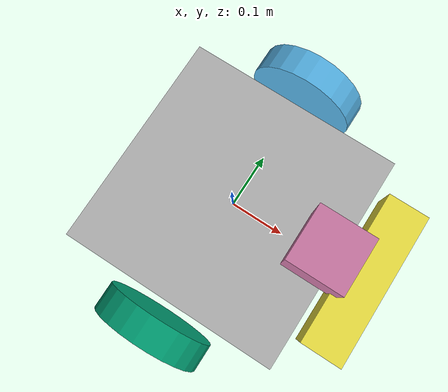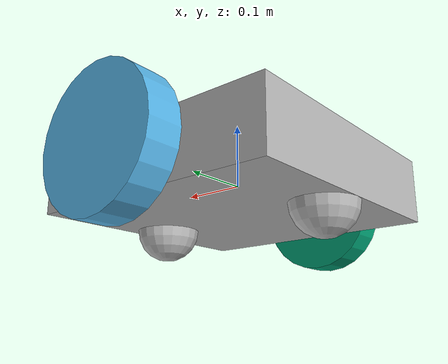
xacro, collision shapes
<?xml version='1.0'?>

<robot name="nick_bot" xmlns:xacro="http://www.ros.org/wiki/xacro">
    <xacro:include filename="$(find slam_project)/urdf/udacity_bot.gazebo"/>
    <link name="robot_footprint"></link>

    <joint name="robot_footprint_joint" type="fixed">
        <origin xyz="0 0 0" rpy="0 0 0"/>
        <parent link="robot_footprint"/>
        <child link="chassis"/>
    </joint>

    <link name='left_wheel'>
        <inertial>
            <mass value="5.0"/>
            <origin xyz="0.0 0 0" rpy=" 0 1.5707 1.5707"/>
            <inertia ixx="0.1" ixy="0" ixz="0" iyy="0.1" iyz="0" izz="0.1"/>
        </inertial>

        <collision name='collision'>
            <origin xyz="0.0 0 0" rpy=" 0 1.5707 1.5707"/>
            <geometry>
                <cylinder length="0.05" radius="0.1"/>
            </geometry>
        </collision>

        <visual name='wheel_visual'>
            <origin xyz="0.0 0 0" rpy=" 0 1.5707 1.5707"/>
            <geometry>
                <cylinder length="0.05" radius="0.1"/>
            </geometry>
        </visual>
    </link>

    <joint type="continuous" name="left_wheel_hinge">
        <origin xyz="0.0 0.25 0" rpy="0 0 0"/>
        <child link="left_wheel"/>
        <parent link="chassis"/>
        <axis xyz="0 1 0" rpy="0 0 0"/>
        <limit effort="10000" velocity="1000"/>
        <joint_properties damping="1.0" friction="1.0"/>
    </joint>

    <link name='right_wheel'>
        <inertial>
            <mass value="5.0"/>
            <origin xyz="0.0 0 0" rpy=" 0 1.5707 1.5707"/>
            <inertia ixx="0.1" ixy="0" ixz="0" iyy="0.1" iyz="0" izz="0.1"/>
        </inertial>

        <collision name='collision'>
            <origin xyz="0.0 0 0" rpy=" 0 1.5707 1.5707"/>
            <geometry>
                <cylinder length="0.05" radius="0.1"/>
            </geometry>
        </collision>

        <visual name='wheel_visual'>
            <origin xyz="0.0 0 0" rpy=" 0 1.5707 1.5707"/>
            <geometry>
                <cylinder length="0.05" radius="0.1"/>
            </geometry>
        </visual>
    </link>

    <joint type="continuous" name="right_wheel_hinge">
        <origin xyz="0 -0.25 0" rpy="0 0 0"/>
        <child link="right_wheel"/>
        <parent link="chassis"/>
        <axis xyz="0 1 0" rpy="0 0 0"/>
        <limit effort="10000" velocity="1000"/>
        <joint_properties damping="1.0" friction="1.0"/>
    </joint>

  <link name="camera">
    <collision name='camera_collision'>
      <origin xyz="0 0 0" rpy=" 0 0 0"/>
      <geometry>
        <box size="0.073 0.276 0.072"/>
      </geometry>
    </collision>

    <visual name='camera_visual'>
      <origin xyz="0 0 0" rpy=" 0 0 0"/>
      <geometry>
        <mesh filename="package://slam_project/meshes/kinect.dae"/>
      </geometry>
    </visual>

    <inertial>
      <mass value="0.1"/>
      <origin xyz="0.0 0 0" rpy=" 0 0 0"/>
      <inertia
          ixx="1e-6" ixy="0" ixz="0"
          iyy="1e-6" iyz="0"
          izz="1e-6"
      />
    </inertial>

  </link>

  <joint type="fixed" name="camera_joint">
    <origin xyz="0.25 0 0.05" rpy="0 0 0"/>
    <child link="camera"/>
    <parent link="chassis"/>
  </joint>

  <joint type="fixed" name="camera_rgbd_joint">
    <origin xyz="0 0 0" rpy="-1.5707 0 -1.5707"/>
    <child link="camera_rgbd_frame"/>
    <parent link="camera"/>
  </joint>

  <link name="camera_rgbd_frame"/>

  <joint type="fixed" name="camera_depth_joint">
    <origin xyz="0 0 0" rpy="0 0 0"/>
    <child link="camera_depth_frame"/>
    <parent link="camera"/>
  </joint>

  <link name="camera_depth_frame"/>

    <link name='hokuyo'>
        <inertial>
            <mass value="0.1"/>
            <origin xyz="0.0 0 0" rpy=" 0 0 0"/>
            <inertia ixx="1e-6" ixy="0" ixz="0" iyy="1e-6" iyz="0" izz="1e-6"/>
        </inertial>

        <collision name='collision'>
            <origin xyz="0.0 0 0" rpy=" 0 0 0"/>
            <geometry>
                <box size="0.1 0.1 0.1"/>
            </geometry>
        </collision>

        <visual name='hokuyo_visual'>
            <origin xyz="0.0 0 0" rpy=" 0 0 0"/>
            <geometry>
                <mesh filename="package://slam_project/meshes/hokuyo.dae"/>
            </geometry>
        </visual>
    </link>
    <joint type="fixed" name="hokuyo_joint">
        <origin xyz="0.175 0.0 0.1" rpy="0 0 0"/>
        <child link="hokuyo"/>
        <parent link="chassis"/>
    </joint>

    <link name='chassis'>
        <pose>0 0 0.1 0 0 0</pose>

        <inertial>
            <mass value="15.0"/>
            <origin xyz="0.0 0 0" rpy=" 0 0 0"/>
            <inertia ixx="0.1" ixy="0" ixz="0" iyy="0.1" iyz="0" izz="0.1"/>
        </inertial>

        <collision name='collision'>
            <origin xyz="0 0 0" rpy=" 0 0 0"/>
            <geometry>
                <box size=".4 .4 .1"/>
            </geometry>
        </collision>

        <visual name='chassis_visual'>
            <origin xyz="0 0 0" rpy=" 0 0 0"/>
            <geometry>
                <box size=".4 .4 .1"/>
            </geometry>
        </visual>

        <collision name='back_caster_collision'>
            <origin xyz="-0.15 0 -0.05" rpy=" 0 0 0"/>
            <geometry>
                <sphere radius="0.05"/>
            </geometry>
            <surface>
                <friction>
                    <ode>
                        <mu>0</mu>
                        <mu2>0</mu2>
                        <slip1>1.0</slip1>
                        <slip2>1.0</slip2>
                    </ode>
                </friction>
            </surface>
        </collision>

        <visual name='back_caster_visual'>
            <origin xyz="-0.15 0 -0.05" rpy=" 0 0 0"/>
            <geometry>
                <sphere radius="0.05"/>
            </geometry>
        </visual>

        <collision name='front_caster_collision'>
            <origin xyz="0.15 0 -0.05" rpy=" 0 0 0"/>
            <geometry>
                <sphere radius="0.05"/>
            </geometry>
            <surface>
                <friction>
                    <ode>
                        <mu>0</mu>
                        <mu2>0</mu2>
                        <slip1>1.0</slip1>
                        <slip2>1.0</slip2>
                    </ode>
                </friction>
            </surface>
        </collision>

        <visual name='front_caster_visual'>
            <origin xyz="0.15 0 -0.05" rpy=" 0 0 0"/>
            <geometry>
                <sphere radius="0.05"/>
            </geometry>
        </visual>

    </link>

</robot>
